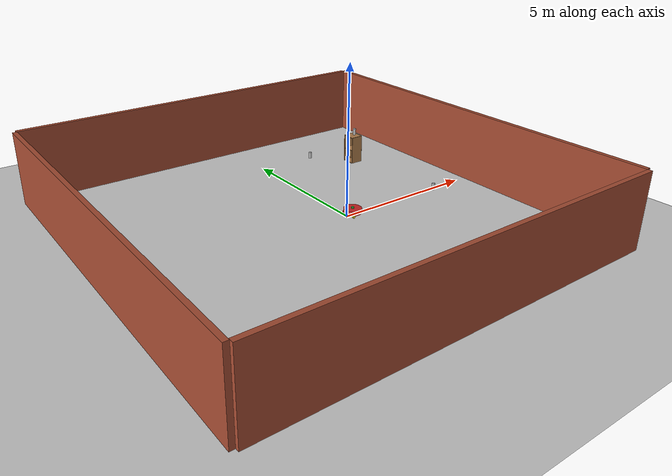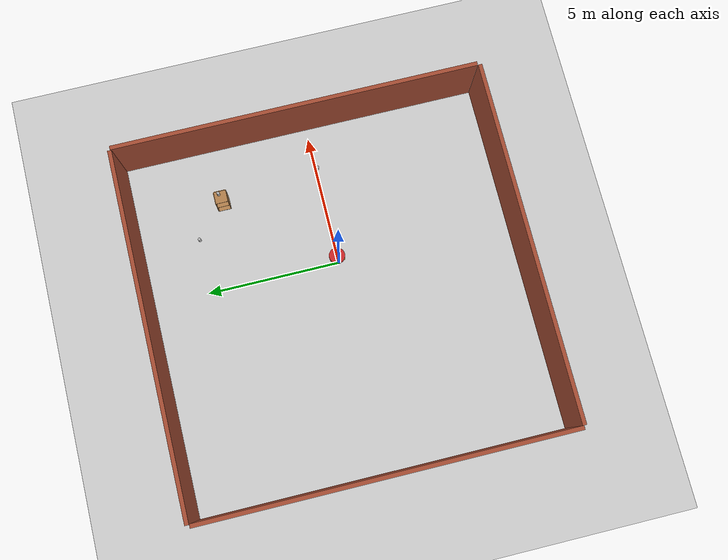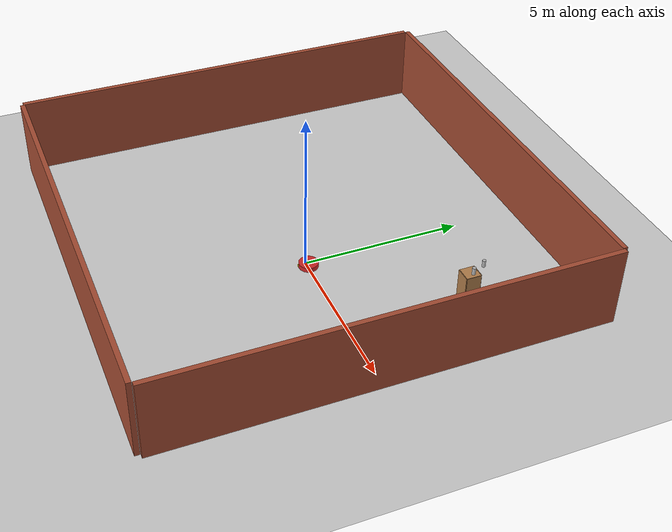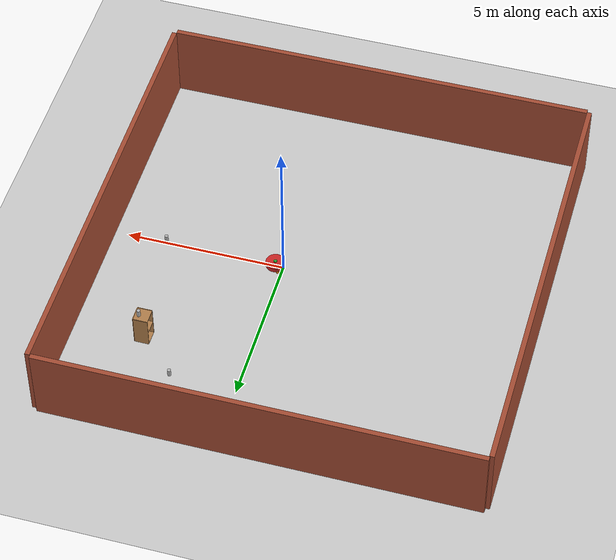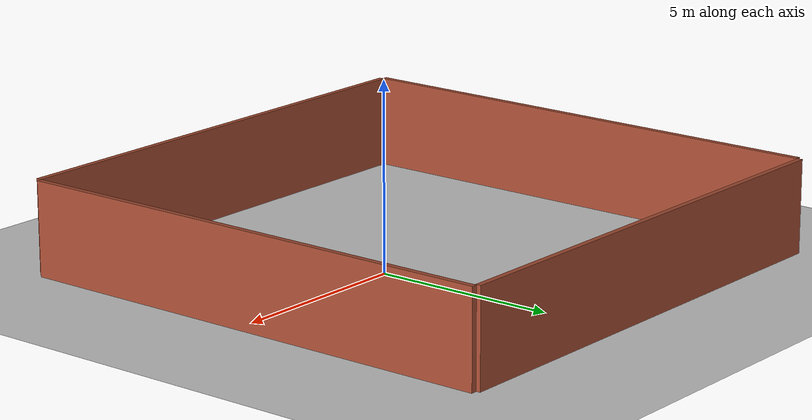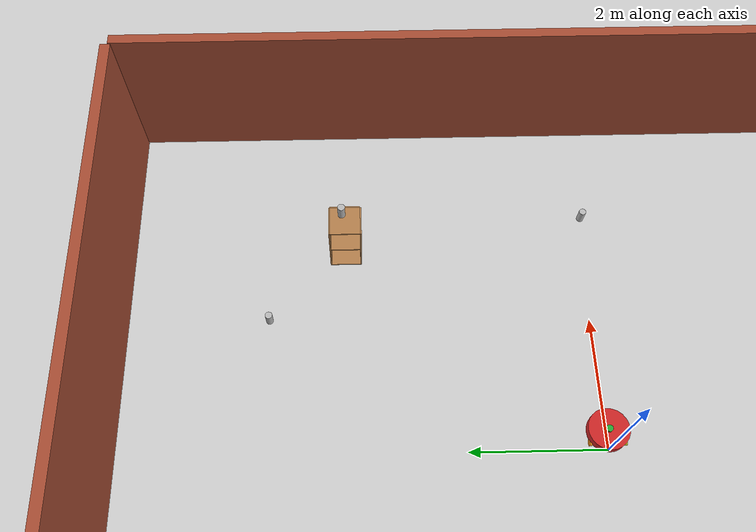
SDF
<sdf version="1.7">
 <world name="default">
  <model name="ground_plane">
   <static>1</static>
   <link name="link">
    <collision name="collision">
     <geometry><plane><normal>0 0 1</normal><size>100 100</size></plane></geometry>
     <surface>
      <contact><collide_bitmask>65535</collide_bitmask></contact>
      <friction><ode><mu>100</mu><mu2>50</mu2></ode></friction>
     </surface>
    </collision>
    <visual name="visual">
     <cast_shadows>0</cast_shadows>
     <geometry><plane><normal>0 0 1</normal><size>100 100</size></plane></geometry>
     <material>
      <script><uri>file://media/materials/scripts/gazebo.material</uri><name>Gazebo/Grey</name></script>
     </material>
    </visual>
   </link>
  </model>
  <gravity>0 0 -9.8</gravity>
  <magnetic_field>6e-06 2.3e-05 -4.2e-05</magnetic_field>
  <atmosphere type="adiabatic"/>
  <physics type="ode">
   <max_step_size>0.001</max_step_size>
   <real_time_factor>1</real_time_factor>
   <real_time_update_rate>1000</real_time_update_rate>
  </physics>
  <scene><ambient>0.4 0.4 0.4 1</ambient><background>0.7 0.7 0.7 1</background><shadows>1</shadows></scene>
  <audio><device>default</device></audio>
  <spherical_coordinates>
   <surface_model>EARTH_WGS84</surface_model>
   <latitude_deg>0</latitude_deg>
   <longitude_deg>0</longitude_deg>
   <elevation>0</elevation>
   <heading_deg>0</heading_deg>
  </spherical_coordinates>
  <model name="four_walls">
   <pose>0.25242 -0.01683 0 0 -0 0</pose>
   <static>1</static>
   <link name="Wall_4">
    <pose>-1.54097 7.13997 0 0 -0 0</pose>
    <collision name="Wall_4_Collision"><geometry><box><size>13.3867 0.15 2.5</size></box></geometry></collision>
    <visual name="Wall_4_Visual">
     <pose>0 0 1.25 0 -0 0</pose>
     <geometry><box><size>13.3867 0.15 2.5</size></box></geometry>
     <material>
      <script><uri>file://media/materials/scripts/gazebo.material</uri><name>Gazebo/Bricks</name></script>
     </material>
    </visual>
   </link>
   <link name="Wall_4_clone">
    <pose>-1.51314 -6.6153 0 0 -0 0</pose>
    <collision name="Wall_4_clone_Collision">
     <geometry><box><size>13.3867 0.15 2.5</size></box></geometry>
    </collision>
    <visual name="Wall_4_clone_Visual">
     <pose>0 0 1.25 0 -0 0</pose>
     <geometry><box><size>13.3867 0.15 2.5</size></box></geometry>
     <material>
      <script><uri>file://media/materials/scripts/gazebo.material</uri><name>Gazebo/Bricks</name></script>
     </material>
    </visual>
   </link>
   <link name="Wall_6">
    <pose>5.24615 0.292041 0 0 0 -1.5708</pose>
    <collision name="Wall_6_Collision"><geometry><box><size>13.6388 0.15 2.5</size></box></geometry></collision>
    <visual name="Wall_6_Visual">
     <pose>0 0 1.25 0 -0 0</pose>
     <geometry><box><size>13.6388 0.15 2.5</size></box></geometry>
     <material>
      <script><uri>file://media/materials/scripts/gazebo.material</uri><name>Gazebo/Bricks</name></script>
     </material>
    </visual>
   </link>
   <link name="Wall_6_clone">
    <pose>-8.28501 0.233544 0 0 0 -1.5708</pose>
    <collision name="Wall_6_clone_Collision">
     <geometry><box><size>13.6388 0.15 2.5</size></box></geometry>
    </collision>
    <visual name="Wall_6_clone_Visual">
     <pose>0 0 1.25 0 -0 0</pose>
     <geometry><box><size>13.6388 0.15 2.5</size></box></geometry>
     <material>
      <script><uri>file://media/materials/scripts/gazebo.material</uri><name>Gazebo/Bricks</name></script>
     </material>
    </visual>
   </link>
  </model>
  <model name="mobile_bot">
   <link name="base_link">
    <inertial>
     <pose>0.048 0 0.068 0 -0 0</pose>
     <mass>0.5</mass>
     <inertia>
      <ixx>0.00953633</ixx>
      <ixy>0</ixy>
      <ixz>0.001632</ixz>
      <iyy>0.0141443</iyy>
      <iyz>0</iyz>
      <izz>0.018333</izz>
     </inertia>
    </inertial>
    <collision name="base_link_fixed_joint_lump__round_body_collision">
     <pose>0 0 0.1 0 -0 0</pose>
     <geometry><cylinder><length>0.15</length><radius>0.3</radius></cylinder></geometry>
    </collision>
    <collision name="base_link_fixed_joint_lump__caster_wheel_collision_1">
     <pose>0.24 0 0 0 -0 0</pose>
     <geometry><sphere><radius>0.05</radius></sphere></geometry>
     <surface><friction><ode><mu>0.001</mu><mu2>0.001</mu2></ode></friction></surface>
    </collision>
    <collision name="base_link_fixed_joint_lump__lidar_link_collision_2">
     <pose>0 0 0.19 0 -0 0</pose>
     <geometry><cylinder><length>0.04</length><radius>0.05</radius></cylinder></geometry>
    </collision>
    <visual name="base_link_fixed_joint_lump__round_body_visual">
     <pose>0 0 0.1 0 -0 0</pose>
     <geometry><cylinder><length>0.15</length><radius>0.3</radius></cylinder></geometry>
     <material>
      <script><name>Gazebo/Red</name><uri>file://media/materials/scripts/gazebo.material</uri></script>
     </material>
    </visual>
    <visual name="base_link_fixed_joint_lump__camera_link_visual_1">
     <pose>0.3 0 0.07 0 -0 0</pose>
     <geometry><box><size>0.01 0.03 0.03</size></box></geometry>
     <material>
      <script><name>Gazebo/Green</name><uri>file://media/materials/scripts/gazebo.material</uri></script>
     </material>
    </visual>
    <visual name="base_link_fixed_joint_lump__caster_wheel_visual_2">
     <pose>0.24 0 0 0 -0 0</pose>
     <geometry><sphere><radius>0.05</radius></sphere></geometry>
     <material>
      <script><name>Gazebo/Blue</name><uri>file://media/materials/scripts/gazebo.material</uri></script>
     </material>
    </visual>
    <visual name="base_link_fixed_joint_lump__lidar_link_visual_3">
     <pose>0 0 0.19 0 -0 0</pose>
     <geometry><cylinder><length>0.04</length><radius>0.05</radius></cylinder></geometry>
     <material>
      <script><name>Gazebo/Green</name><uri>file://media/materials/scripts/gazebo.material</uri></script>
     </material>
    </visual>
    <sensor name="camera" type="camera">
     <visualize>1</visualize>
     <update_rate>10</update_rate>
     <camera>
      <horizontal_fov>1.5708</horizontal_fov>
      <image><format>R8G8B8</format><width>640</width><height>480</height></image>
      <clip><near>0.05</near><far>8</far></clip>
     </camera>
     <plugin name="camera_controller" filename="libgazebo_ros_camera.so">
      <frame_name>camera_link_optical</frame_name>
     </plugin>
     <pose>0.3 0 0.07 0 -0 0</pose>
    </sensor>
    <sensor name="laser" type="ray">
     <visualize>1</visualize>
     <update_rate>10</update_rate>
     <ray>
      <scan>
       <horizontal>
        <samples>180</samples>
        <min_angle>-0.7854</min_angle>
        <max_angle>0.7854</max_angle>
        <resolution>1</resolution>
       </horizontal>
       <vertical><samples>1</samples><min_angle>0</min_angle><max_angle>0</max_angle></vertical>
      </scan>
      <range><min>0.3</min><max>5</max></range>
     </ray>
     <plugin name="laser_controller" filename="libgazebo_ros_ray_sensor.so">
      <ros><argument>~/out:=scan</argument></ros>
      <output_type>sensor_msgs/LaserScan</output_type>
      <frame_name>lidar_link</frame_name>
     </plugin>
     <pose>0 0 0.19 0 -0 0</pose>
    </sensor>
   </link>
   <joint name="left_wheel_joint" type="revolute">
    <pose relative_to="base_link">-0.15 0.25 0 -1.57 0 0</pose>
    <parent>base_link</parent>
    <child>left_wheel</child>
    <axis>
     <xyz>0 0 1</xyz>
     <limit><lower>-1e+16</lower><upper>1e+16</upper></limit>
     <dynamics><spring_reference>0</spring_reference><spring_stiffness>0</spring_stiffness></dynamics>
    </axis>
   </joint>
   <link name="left_wheel">
    <pose relative_to="left_wheel_joint">0 0 0 0 -0 0</pose>
    <inertial>
     <mass>0.1</mass>
     <inertia>
      <ixx>8.33333e-05</ixx>
      <ixy>0</ixy>
      <ixz>0</ixz>
      <iyy>8.33333e-05</iyy>
      <iyz>0</iyz>
      <izz>0.000125</izz>
     </inertia>
    </inertial>
    <collision name="left_wheel_collision">
     <geometry><cylinder><length>0.04</length><radius>0.05</radius></cylinder></geometry>
    </collision>
    <visual name="left_wheel_visual">
     <geometry><cylinder><length>0.04</length><radius>0.05</radius></cylinder></geometry>
     <material>
      <script><name>Gazebo/Orange</name><uri>file://media/materials/scripts/gazebo.material</uri></script>
     </material>
    </visual>
   </link>
   <joint name="right_wheel_joint" type="revolute">
    <pose relative_to="base_link">-0.15 -0.25 0 1.57 -0 0</pose>
    <parent>base_link</parent>
    <child>right_wheel</child>
    <axis>
     <xyz>0 0 -1</xyz>
     <limit><lower>-1e+16</lower><upper>1e+16</upper></limit>
     <dynamics><spring_reference>0</spring_reference><spring_stiffness>0</spring_stiffness></dynamics>
    </axis>
   </joint>
   <link name="right_wheel">
    <pose relative_to="right_wheel_joint">0 0 0 0 -0 0</pose>
    <inertial>
     <mass>0.1</mass>
     <inertia>
      <ixx>8.33333e-05</ixx>
      <ixy>0</ixy>
      <ixz>0</ixz>
      <iyy>8.33333e-05</iyy>
      <iyz>0</iyz>
      <izz>0.000125</izz>
     </inertia>
    </inertial>
    <collision name="right_wheel_collision">
     <geometry><cylinder><length>0.04</length><radius>0.05</radius></cylinder></geometry>
    </collision>
    <visual name="right_wheel_visual">
     <geometry><cylinder><length>0.04</length><radius>0.05</radius></cylinder></geometry>
     <material>
      <script><name>Gazebo/Yellow</name><uri>file://media/materials/scripts/gazebo.material</uri></script>
     </material>
    </visual>
   </link>
   <static>0</static>
   <plugin name="diff_drive" filename="libgazebo_ros_diff_drive.so">
    <left_joint>left_wheel_joint</left_joint>
    <right_joint>right_wheel_joint</right_joint>
    <wheel_separation>0.50</wheel_separation>
    <wheel_diameter>0.1</wheel_diameter>
    <max_wheel_torque>200</max_wheel_torque>
    <max_wheel_acceleration>10.0</max_wheel_acceleration>
    <odometry_frame>odom</odometry_frame>
    <robot_base_frame>base_link</robot_base_frame>
    <publish_odom>1</publish_odom>
    <publish_odom_tf>1</publish_odom_tf>
    <publish_wheel_tf>1</publish_wheel_tf>
   </plugin>
   <pose>0.245842 0.002432 0.050008 1e-05 3.2e-05 -0.002829</pose>
  </model>
  <light name="sun" type="directional">
   <pose>-0.693099 0.36782 10 0 -0 0</pose>
   <diffuse>0.8 0.8 0.8 1</diffuse>
   <specular>0.2 0.2 0.2 1</specular>
   <attenuation>
    <range>1000</range>
    <constant>0.9</constant>
    <linear>0.01</linear>
    <quadratic>0.001</quadratic>
   </attenuation>
   <direction>-0.5 0.1 -0.9</direction>
  </light>
  <model name="beer">
   <link name="link">
    <pose>0 0 0.115 0 -0 0</pose>
    <inertial>
     <mass>0.39</mass>
     <inertia><ixx>0.00058</ixx><ixy>0</ixy><ixz>0</ixz><iyy>0.00058</iyy><iyz>0</iyz><izz>0.00019</izz></inertia>
    </inertial>
    <collision name="collision">
     <geometry><cylinder><radius>0.055</radius><length>0.23</length></cylinder></geometry>
    </collision>
    <visual name="visual">
     <geometry><cylinder><radius>0.055</radius><length>0.23</length></cylinder></geometry>
     <material>
      <script>
       <uri>model://beer/materials/scripts</uri>
       <uri>model://beer/materials/textures</uri>
       <name>Beer/Diffuse</name>
      </script>
     </material>
    </visual>
   </link>
   <pose>3.78677 -0.089763 -7e-06 -0 -0 -1.9e-05</pose>
  </model>
  <model name="beer_0">
   <link name="link">
    <pose>0 0 0.115 0 -0 0</pose>
    <inertial>
     <mass>0.39</mass>
     <inertia><ixx>0.00058</ixx><ixy>0</ixy><ixz>0</ixz><iyy>0.00058</iyy><iyz>0</iyz><izz>0.00019</izz></inertia>
    </inertial>
    <collision name="collision">
     <geometry><cylinder><radius>0.055</radius><length>0.23</length></cylinder></geometry>
    </collision>
    <visual name="visual">
     <geometry><cylinder><radius>0.055</radius><length>0.23</length></cylinder></geometry>
     <material>
      <script>
       <uri>model://beer/materials/scripts</uri>
       <uri>model://beer/materials/textures</uri>
       <name>Beer/Diffuse</name>
      </script>
     </material>
    </visual>
   </link>
   <pose>2.08664 4.89543 -7e-06 -0 -0 -1.9e-05</pose>
  </model>
  <model name="cabinet">
   <static>1</static>
   <link name="cabinet_bottom_plate">
    <inertial>
     <pose>0 0 -1 0 -0 0</pose>
     <inertia><ixx>2.05</ixx><ixy>0</ixy><ixz>0</ixz><iyy>2.05</iyy><iyz>0</iyz><izz>2.05</izz></inertia>
     <mass>25</mass>
    </inertial>
    <collision name="cabinet_bottom_plate_geom">
     <pose>0 0 0.01 0 -0 0</pose>
     <geometry><box><size>0.45 0.45 0.02</size></box></geometry>
    </collision>
    <visual name="cabinet_bottom_plate_geom_visual">
     <pose>0 0 0.01 0 -0 0</pose>
     <geometry><box><size>0.45 0.45 0.02</size></box></geometry>
     <material>
      <script><uri>file://media/materials/scripts/gazebo.material</uri><name>Gazebo/Wood</name></script>
     </material>
    </visual>
    <collision name="cabinet_bottom_plate_geom_cabinet_back_plate">
     <pose>0.235 0 0.51 0 -0 0</pose>
     <geometry><box><size>0.02 0.45 1.02</size></box></geometry>
    </collision>
    <visual name="cabinet_bottom_plate_geom_cabinet_back_plate_visual">
     <pose>0.235 0 0.51 0 -0 0</pose>
     <geometry><box><size>0.02 0.45 1.02</size></box></geometry>
     <material>
      <script><uri>file://media/materials/scripts/gazebo.material</uri><name>Gazebo/Wood</name></script>
     </material>
    </visual>
    <collision name="cabinet_bottom_plate_geom_cabinet_left_plate">
     <pose>0 0.235 0.51 0 -0 0</pose>
     <geometry><box><size>0.45 0.02 1.02</size></box></geometry>
    </collision>
    <visual name="cabinet_bottom_plate_geom_cabinet_left_plate_visual">
     <pose>0 0.235 0.51 0 -0 0</pose>
     <geometry><box><size>0.45 0.02 1.02</size></box></geometry>
     <material>
      <script><uri>file://media/materials/scripts/gazebo.material</uri><name>Gazebo/Wood</name></script>
     </material>
    </visual>
    <collision name="cabinet_bottom_plate_geom_cabinet_middle_plate">
     <pose>0 0 0.51 0 -0 0</pose>
     <geometry><box><size>0.45 0.45 0.02</size></box></geometry>
    </collision>
    <visual name="cabinet_bottom_plate_geom_cabinet_middle_plate_visual">
     <pose>0 0 0.51 0 -0 0</pose>
     <geometry><box><size>0.45 0.45 0.02</size></box></geometry>
     <material>
      <script><uri>file://media/materials/scripts/gazebo.material</uri><name>Gazebo/Wood</name></script>
     </material>
    </visual>
    <collision name="cabinet_bottom_plate_geom_cabinet_right_plate">
     <pose>0 -0.235 0.51 0 -0 0</pose>
     <geometry><box><size>0.45 0.02 1.02</size></box></geometry>
    </collision>
    <visual name="cabinet_bottom_plate_geom_cabinet_right_plate_visual">
     <pose>0 -0.235 0.51 0 -0 0</pose>
     <geometry><box><size>0.45 0.02 1.02</size></box></geometry>
     <material>
      <script><uri>file://media/materials/scripts/gazebo.material</uri><name>Gazebo/Wood</name></script>
     </material>
    </visual>
    <collision name="cabinet_bottom_plate_geom_cabinet_top_plate">
     <pose>0 0 1.01 0 -0 0</pose>
     <geometry><box><size>0.45 0.45 0.02</size></box></geometry>
    </collision>
    <visual name="cabinet_bottom_plate_geom_cabinet_top_plate_visual">
     <pose>0 0 1.01 0 -0 0</pose>
     <geometry><box><size>0.45 0.45 0.02</size></box></geometry>
     <material>
      <script><uri>file://media/materials/scripts/gazebo.material</uri><name>Gazebo/Wood</name></script>
     </material>
    </visual>
   </link>
   <pose>3.25294 3.71441 0 0 -0 0</pose>
  </model>
  <model name="beer_1">
   <link name="link">
    <pose>0 0 0.115 0 -0 0</pose>
    <inertial>
     <mass>0.39</mass>
     <inertia><ixx>0.00058</ixx><ixy>0</ixy><ixz>0</ixz><iyy>0.00058</iyy><iyz>0</iyz><izz>0.00019</izz></inertia>
    </inertial>
    <collision name="collision">
     <geometry><cylinder><radius>0.055</radius><length>0.23</length></cylinder></geometry>
    </collision>
    <visual name="visual">
     <geometry><cylinder><radius>0.055</radius><length>0.23</length></cylinder></geometry>
     <material>
      <script>
       <uri>model://beer/materials/scripts</uri>
       <uri>model://beer/materials/textures</uri>
       <name>Beer/Diffuse</name>
      </script>
     </material>
    </visual>
   </link>
   <pose>3.35171 3.76307 1.02 -2.2e-05 -5e-06 7.8e-05</pose>
  </model>
 </world>
</sdf>
